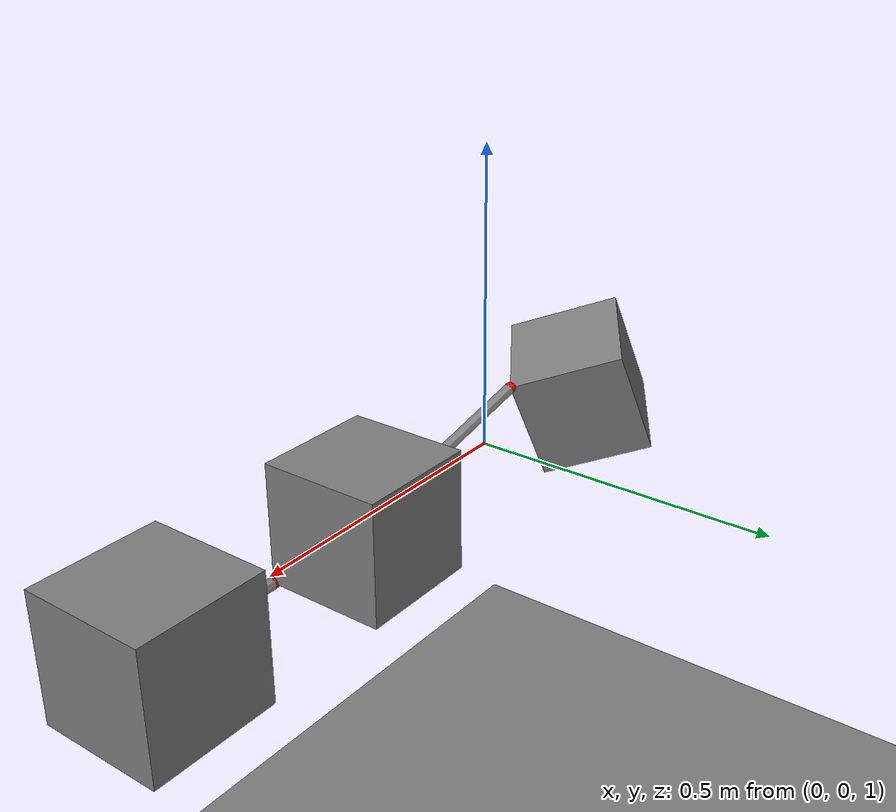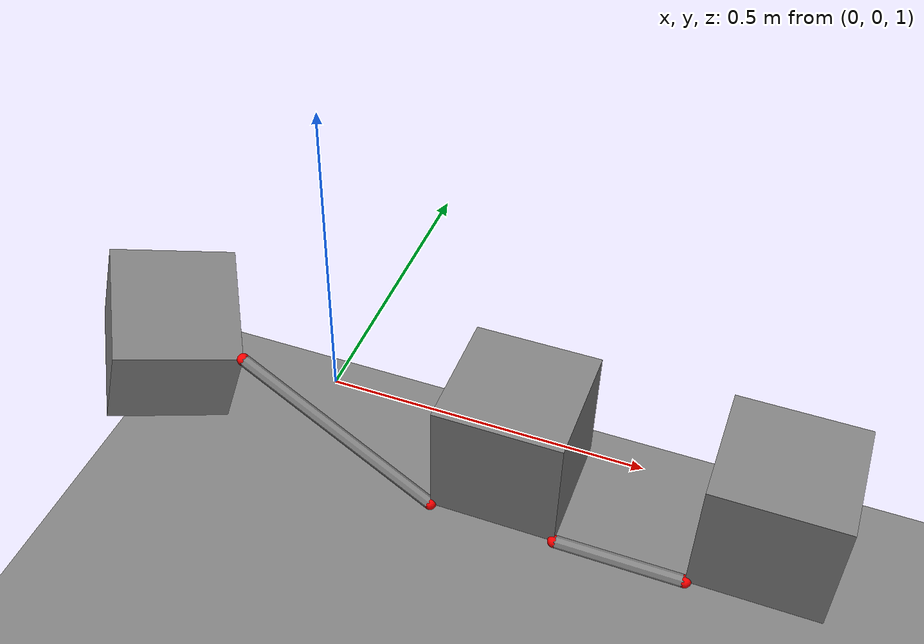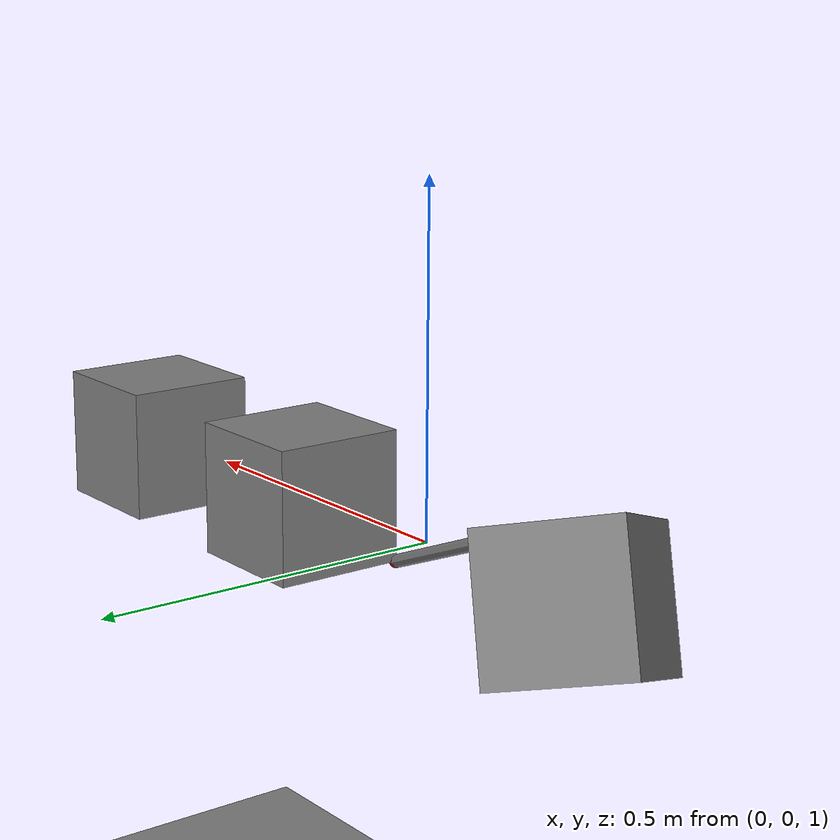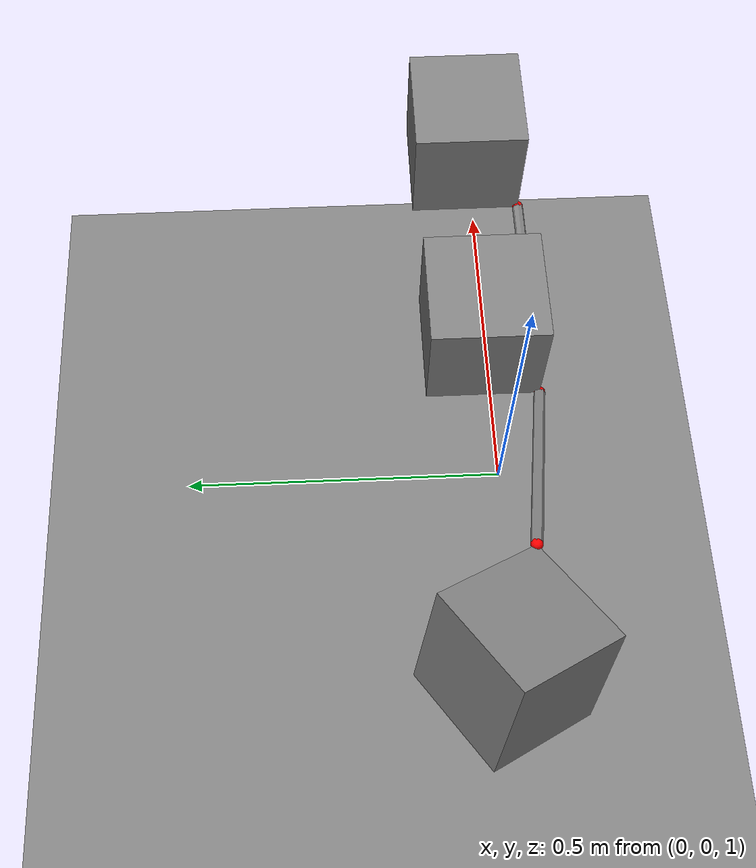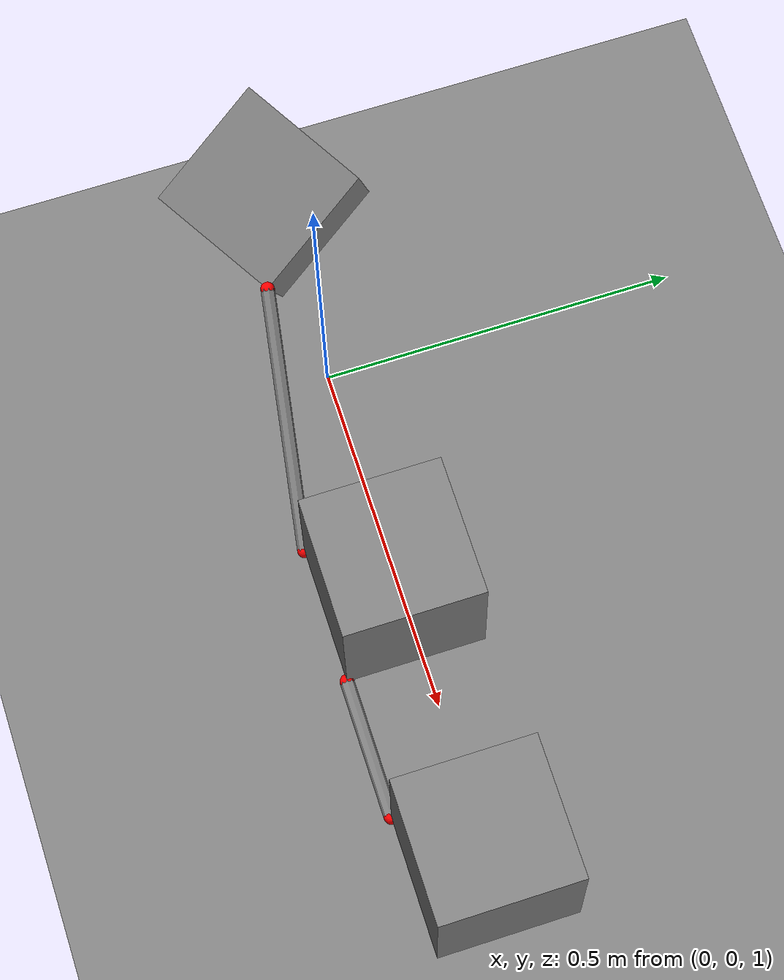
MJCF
<mujoco>
  <option>
    <flag sleep="enable"/>
  </option>

  <worldbody>
    <light pos="0 -1 4"/>
    <geom type="plane" size="1.5 1.5 .01" rgba=".5 .5 .5 .5"/>

    <body pos=".3 0 1" sleep="init">
      <freejoint/>
      <geom type="box" size=".1 .1 .1"/>
      <site name="1" pos="-.1 -.1 -.1" size=".01" rgba="1 0 0 1"/>
      <site name="2" pos=".1 -.1 -.1" size=".01" rgba="1 0 0 1"/>
    </body>

    <body pos="-.3 0 1" euler="10 20 30">
      <freejoint/>
      <geom type="box" size=".1 .1 .1"/>
      <site name="3" pos=".1 -.1 .1" size=".01" rgba="1 0 0 1"/>
    </body>

    <body pos=".7 0 1" sleep="init">
      <freejoint/>
      <geom type="box" size=".1 .1 .1"/>
      <site name="4" pos="-.1 -.1 -.1" size=".01" rgba="1 0 0 1"/>
    </body>
  </worldbody>

  <tendon>
    <spatial range="0 .6" width="0.01">
      <site site="1"/>
      <site site="3"/>
    </spatial>
    <spatial range="0 .6" width="0.01">
      <site site="2"/>
      <site site="4"/>
    </spatial>
  </tendon>
</mujoco>
